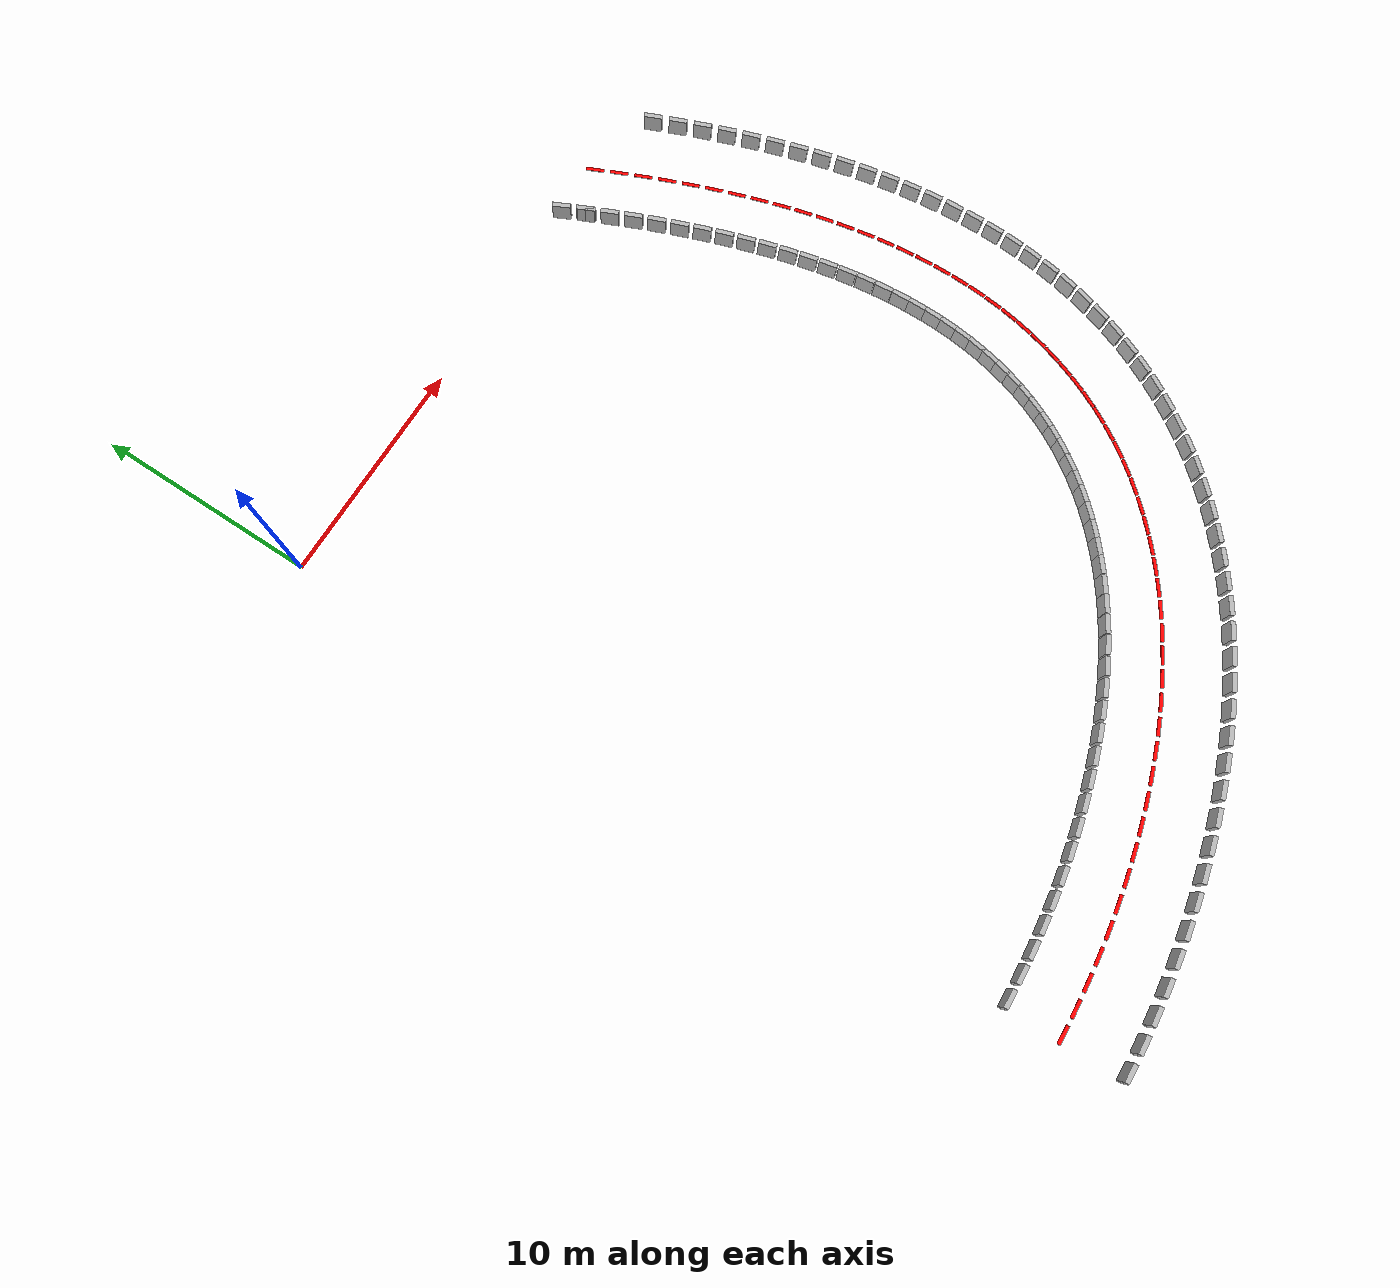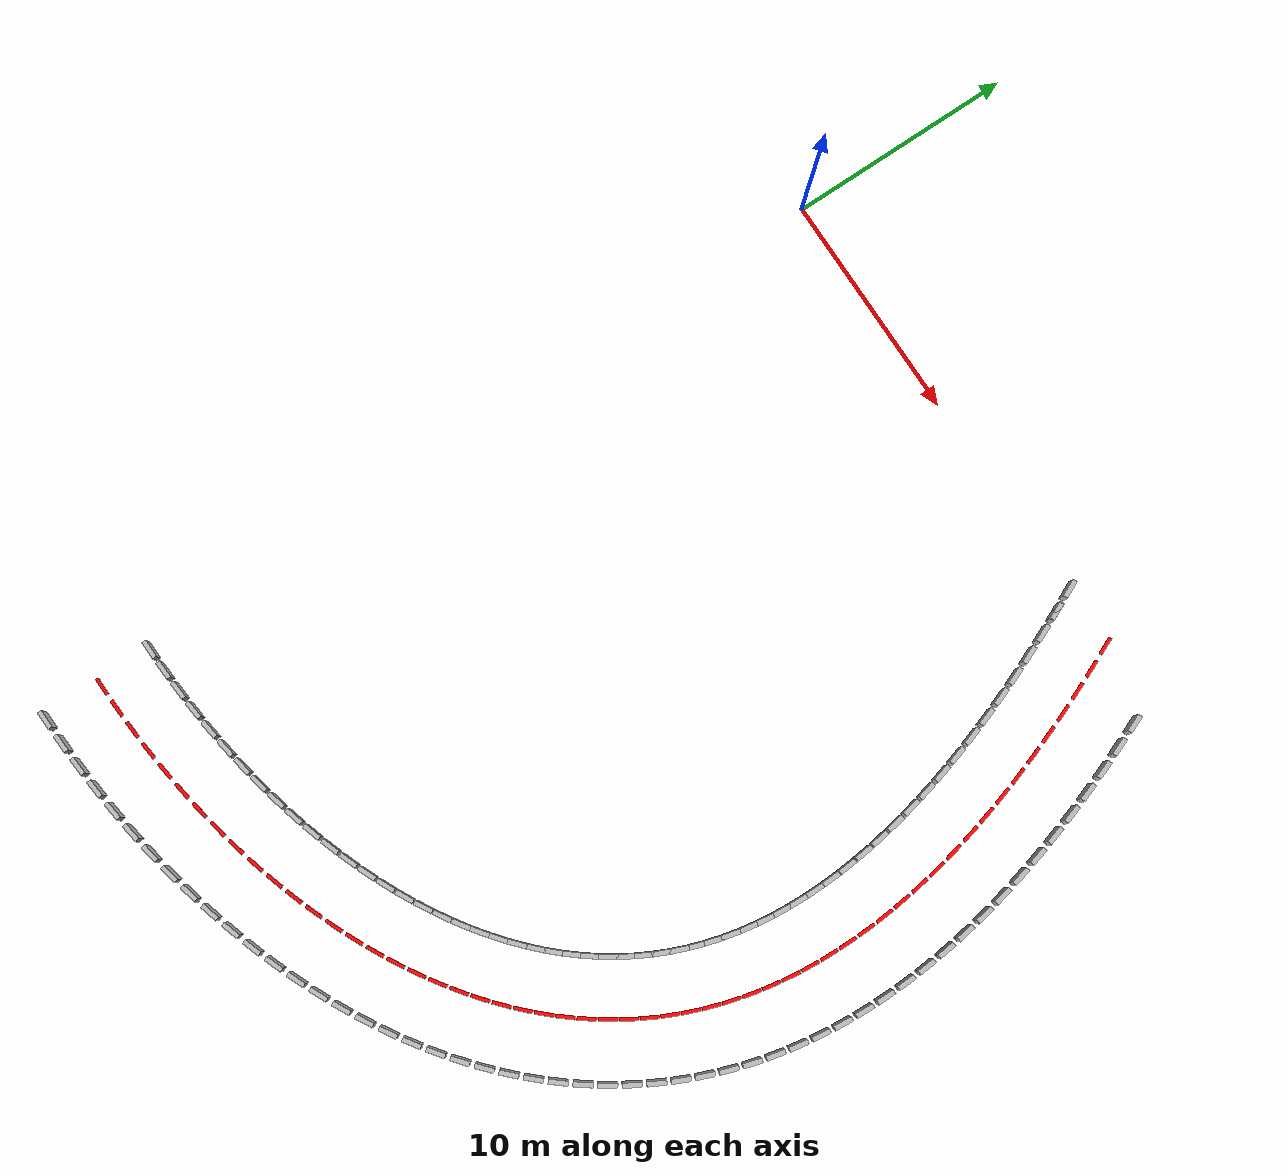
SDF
<sdf version="1.7">
 <model name="track_walls">
  <static>true</static>
  <link name="right_0">
   <pose>19.718 -1.022 0.5 0 0 -1.150</pose>
   <collision name="c"><geometry><box><size>0.8 0.2 1.0</size></box></geometry></collision>
   <visual name="v"><geometry><box><size>0.8 0.2 1.0</size></box></geometry></visual>
  </link>
  <link name="center_0">
   <pose>22.000 -0.000 0.010 0 0 -1.150</pose>
   <visual name="v">
    <geometry><box><size>0.8 0.15 0.02</size></box></geometry>
    <material><ambient>1 0 0 1</ambient><diffuse>1 0 0 1</diffuse></material>
   </visual>
  </link>
  <link name="right_1">
   <pose>20.160 -2.008 0.5 0 0 -1.158</pose>
   <collision name="c"><geometry><box><size>0.8 0.2 1.0</size></box></geometry></collision>
   <visual name="v"><geometry><box><size>0.8 0.2 1.0</size></box></geometry></visual>
  </link>
  <link name="center_1">
   <pose>22.450 -1.004 0.010 0 0 -1.158</pose>
   <visual name="v">
    <geometry><box><size>0.8 0.15 0.02</size></box></geometry>
    <material><ambient>1 0 0 1</ambient><diffuse>1 0 0 1</diffuse></material>
   </visual>
  </link>
  <link name="left_2">
   <pose>25.186 -1.042 0.5 0 0 -1.174</pose>
   <collision name="c"><geometry><box><size>0.8 0.2 1.0</size></box></geometry></collision>
   <visual name="v"><geometry><box><size>0.8 0.2 1.0</size></box></geometry></visual>
  </link>
  <link name="right_2">
   <pose>20.574 -2.973 0.5 0 0 -1.174</pose>
   <collision name="c"><geometry><box><size>0.8 0.2 1.0</size></box></geometry></collision>
   <visual name="v"><geometry><box><size>0.8 0.2 1.0</size></box></geometry></visual>
  </link>
  <link name="center_2">
   <pose>22.880 -2.007 0.010 0 0 -1.174</pose>
   <visual name="v">
    <geometry><box><size>0.8 0.15 0.02</size></box></geometry>
    <material><ambient>1 0 0 1</ambient><diffuse>1 0 0 1</diffuse></material>
   </visual>
  </link>
  <link name="left_3">
   <pose>25.612 -2.085 0.5 0 0 -1.192</pose>
   <collision name="c"><geometry><box><size>0.8 0.2 1.0</size></box></geometry></collision>
   <visual name="v"><geometry><box><size>0.8 0.2 1.0</size></box></geometry></visual>
  </link>
  <link name="right_3">
   <pose>20.966 -3.933 0.5 0 0 -1.192</pose>
   <collision name="c"><geometry><box><size>0.8 0.2 1.0</size></box></geometry></collision>
   <visual name="v"><geometry><box><size>0.8 0.2 1.0</size></box></geometry></visual>
  </link>
  <link name="center_3">
   <pose>23.289 -3.009 0.010 0 0 -1.192</pose>
   <visual name="v">
    <geometry><box><size>0.8 0.15 0.02</size></box></geometry>
    <material><ambient>1 0 0 1</ambient><diffuse>1 0 0 1</diffuse></material>
   </visual>
  </link>
  <link name="left_4">
   <pose>26.016 -3.129 0.5 0 0 -1.212</pose>
   <collision name="c"><geometry><box><size>0.8 0.2 1.0</size></box></geometry></collision>
   <visual name="v"><geometry><box><size>0.8 0.2 1.0</size></box></geometry></visual>
  </link>
  <link name="right_4">
   <pose>21.335 -4.887 0.5 0 0 -1.212</pose>
   <collision name="c"><geometry><box><size>0.8 0.2 1.0</size></box></geometry></collision>
   <visual name="v"><geometry><box><size>0.8 0.2 1.0</size></box></geometry></visual>
  </link>
  <link name="center_4">
   <pose>23.675 -4.008 0.010 0 0 -1.212</pose>
   <visual name="v">
    <geometry><box><size>0.8 0.15 0.02</size></box></geometry>
    <material><ambient>1 0 0 1</ambient><diffuse>1 0 0 1</diffuse></material>
   </visual>
  </link>
  <link name="left_5">
   <pose>26.396 -4.173 0.5 0 0 -1.232</pose>
   <collision name="c"><geometry><box><size>0.8 0.2 1.0</size></box></geometry></collision>
   <visual name="v"><geometry><box><size>0.8 0.2 1.0</size></box></geometry></visual>
  </link>
  <link name="right_5">
   <pose>21.680 -5.834 0.5 0 0 -1.232</pose>
   <collision name="c"><geometry><box><size>0.8 0.2 1.0</size></box></geometry></collision>
   <visual name="v"><geometry><box><size>0.8 0.2 1.0</size></box></geometry></visual>
  </link>
  <link name="center_5">
   <pose>24.038 -5.004 0.010 0 0 -1.232</pose>
   <visual name="v">
    <geometry><box><size>0.8 0.15 0.02</size></box></geometry>
    <material><ambient>1 0 0 1</ambient><diffuse>1 0 0 1</diffuse></material>
   </visual>
  </link>
  <link name="left_6">
   <pose>26.751 -5.218 0.5 0 0 -1.254</pose>
   <collision name="c"><geometry><box><size>0.8 0.2 1.0</size></box></geometry></collision>
   <visual name="v"><geometry><box><size>0.8 0.2 1.0</size></box></geometry></visual>
  </link>
  <link name="right_6">
   <pose>21.999 -6.773 0.5 0 0 -1.254</pose>
   <collision name="c"><geometry><box><size>0.8 0.2 1.0</size></box></geometry></collision>
   <visual name="v"><geometry><box><size>0.8 0.2 1.0</size></box></geometry></visual>
  </link>
  <link name="center_6">
   <pose>24.375 -5.995 0.010 0 0 -1.254</pose>
   <visual name="v">
    <geometry><box><size>0.8 0.15 0.02</size></box></geometry>
    <material><ambient>1 0 0 1</ambient><diffuse>1 0 0 1</diffuse></material>
   </visual>
  </link>
  <link name="left_7">
   <pose>27.079 -6.261 0.5 0 0 -1.278</pose>
   <collision name="c"><geometry><box><size>0.8 0.2 1.0</size></box></geometry></collision>
   <visual name="v"><geometry><box><size>0.8 0.2 1.0</size></box></geometry></visual>
  </link>
  <link name="right_7">
   <pose>22.292 -7.703 0.5 0 0 -1.278</pose>
   <collision name="c"><geometry><box><size>0.8 0.2 1.0</size></box></geometry></collision>
   <visual name="v"><geometry><box><size>0.8 0.2 1.0</size></box></geometry></visual>
  </link>
  <link name="center_7">
   <pose>24.685 -6.982 0.010 0 0 -1.278</pose>
   <visual name="v">
    <geometry><box><size>0.8 0.15 0.02</size></box></geometry>
    <material><ambient>1 0 0 1</ambient><diffuse>1 0 0 1</diffuse></material>
   </visual>
  </link>
  <link name="left_8">
   <pose>27.379 -7.303 0.5 0 0 -1.304</pose>
   <collision name="c"><geometry><box><size>0.8 0.2 1.0</size></box></geometry></collision>
   <visual name="v"><geometry><box><size>0.8 0.2 1.0</size></box></geometry></visual>
  </link>
  <link name="right_8">
   <pose>22.557 -8.623 0.5 0 0 -1.304</pose>
   <collision name="c"><geometry><box><size>0.8 0.2 1.0</size></box></geometry></collision>
   <visual name="v"><geometry><box><size>0.8 0.2 1.0</size></box></geometry></visual>
  </link>
  <link name="center_8">
   <pose>24.968 -7.963 0.010 0 0 -1.304</pose>
   <visual name="v">
    <geometry><box><size>0.8 0.15 0.02</size></box></geometry>
    <material><ambient>1 0 0 1</ambient><diffuse>1 0 0 1</diffuse></material>
   </visual>
  </link>
  <link name="left_9">
   <pose>27.649 -8.343 0.5 0 0 -1.331</pose>
   <collision name="c"><geometry><box><size>0.8 0.2 1.0</size></box></geometry></collision>
   <visual name="v"><geometry><box><size>0.8 0.2 1.0</size></box></geometry></visual>
  </link>
  <link name="right_9">
   <pose>22.793 -9.532 0.5 0 0 -1.331</pose>
   <collision name="c"><geometry><box><size>0.8 0.2 1.0</size></box></geometry></collision>
   <visual name="v"><geometry><box><size>0.8 0.2 1.0</size></box></geometry></visual>
  </link>
  <link name="center_9">
   <pose>25.221 -8.937 0.010 0 0 -1.331</pose>
   <visual name="v">
    <geometry><box><size>0.8 0.15 0.02</size></box></geometry>
    <material><ambient>1 0 0 1</ambient><diffuse>1 0 0 1</diffuse></material>
   </visual>
  </link>
  <link name="left_10">
   <pose>27.888 -9.380 0.5 0 0 -1.359</pose>
   <collision name="c"><geometry><box><size>0.8 0.2 1.0</size></box></geometry></collision>
   <visual name="v"><geometry><box><size>0.8 0.2 1.0</size></box></geometry></visual>
  </link>
  <link name="right_10">
   <pose>22.999 -10.429 0.5 0 0 -1.359</pose>
   <collision name="c"><geometry><box><size>0.8 0.2 1.0</size></box></geometry></collision>
   <visual name="v"><geometry><box><size>0.8 0.2 1.0</size></box></geometry></visual>
  </link>
  <link name="center_10">
   <pose>25.443 -9.904 0.010 0 0 -1.359</pose>
   <visual name="v">
    <geometry><box><size>0.8 0.15 0.02</size></box></geometry>
    <material><ambient>1 0 0 1</ambient><diffuse>1 0 0 1</diffuse></material>
   </visual>
  </link>
  <link name="left_11">
   <pose>28.094 -10.414 0.5 0 0 -1.390</pose>
   <collision name="c"><geometry><box><size>0.8 0.2 1.0</size></box></geometry></collision>
   <visual name="v"><geometry><box><size>0.8 0.2 1.0</size></box></geometry></visual>
  </link>
  <link name="right_11">
   <pose>23.175 -11.313 0.5 0 0 -1.390</pose>
   <collision name="c"><geometry><box><size>0.8 0.2 1.0</size></box></geometry></collision>
   <visual name="v"><geometry><box><size>0.8 0.2 1.0</size></box></geometry></visual>
  </link>
  <link name="center_11">
   <pose>25.634 -10.863 0.010 0 0 -1.390</pose>
   <visual name="v">
    <geometry><box><size>0.8 0.15 0.02</size></box></geometry>
    <material><ambient>1 0 0 1</ambient><diffuse>1 0 0 1</diffuse></material>
   </visual>
  </link>
  <link name="left_12">
   <pose>28.265 -11.444 0.5 0 0 -1.422</pose>
   <collision name="c"><geometry><box><size>0.8 0.2 1.0</size></box></geometry></collision>
   <visual name="v"><geometry><box><size>0.8 0.2 1.0</size></box></geometry></visual>
  </link>
  <link name="right_12">
   <pose>23.320 -12.183 0.5 0 0 -1.422</pose>
   <collision name="c"><geometry><box><size>0.8 0.2 1.0</size></box></geometry></collision>
   <visual name="v"><geometry><box><size>0.8 0.2 1.0</size></box></geometry></visual>
  </link>
  <link name="center_12">
   <pose>25.792 -11.813 0.010 0 0 -1.422</pose>
   <visual name="v">
    <geometry><box><size>0.8 0.15 0.02</size></box></geometry>
    <material><ambient>1 0 0 1</ambient><diffuse>1 0 0 1</diffuse></material>
   </visual>
  </link>
  <link name="left_13">
   <pose>28.401 -12.469 0.5 0 0 -1.457</pose>
   <collision name="c"><geometry><box><size>0.8 0.2 1.0</size></box></geometry></collision>
   <visual name="v"><geometry><box><size>0.8 0.2 1.0</size></box></geometry></visual>
  </link>
  <link name="right_13">
   <pose>23.433 -13.038 0.5 0 0 -1.457</pose>
   <collision name="c"><geometry><box><size>0.8 0.2 1.0</size></box></geometry></collision>
   <visual name="v"><geometry><box><size>0.8 0.2 1.0</size></box></geometry></visual>
  </link>
  <link name="center_13">
   <pose>25.917 -12.754 0.010 0 0 -1.457</pose>
   <visual name="v">
    <geometry><box><size>0.8 0.15 0.02</size></box></geometry>
    <material><ambient>1 0 0 1</ambient><diffuse>1 0 0 1</diffuse></material>
   </visual>
  </link>
  <link name="left_14">
   <pose>28.499 -13.490 0.5 0 0 -1.493</pose>
   <collision name="c"><geometry><box><size>0.8 0.2 1.0</size></box></geometry></collision>
   <visual name="v"><geometry><box><size>0.8 0.2 1.0</size></box></geometry></visual>
  </link>
  <link name="right_14">
   <pose>23.514 -13.877 0.5 0 0 -1.493</pose>
   <collision name="c"><geometry><box><size>0.8 0.2 1.0</size></box></geometry></collision>
   <visual name="v"><geometry><box><size>0.8 0.2 1.0</size></box></geometry></visual>
  </link>
  <link name="center_14">
   <pose>26.006 -13.683 0.010 0 0 -1.493</pose>
   <visual name="v">
    <geometry><box><size>0.8 0.15 0.02</size></box></geometry>
    <material><ambient>1 0 0 1</ambient><diffuse>1 0 0 1</diffuse></material>
   </visual>
  </link>
  <link name="left_15">
   <pose>28.559 -14.504 0.5 0 0 -1.532</pose>
   <collision name="c"><geometry><box><size>0.8 0.2 1.0</size></box></geometry></collision>
   <visual name="v"><geometry><box><size>0.8 0.2 1.0</size></box></geometry></visual>
  </link>
  <link name="right_15">
   <pose>23.562 -14.700 0.5 0 0 -1.532</pose>
   <collision name="c"><geometry><box><size>0.8 0.2 1.0</size></box></geometry></collision>
   <visual name="v"><geometry><box><size>0.8 0.2 1.0</size></box></geometry></visual>
  </link>
  <link name="center_15">
   <pose>26.060 -14.602 0.010 0 0 -1.532</pose>
   <visual name="v">
    <geometry><box><size>0.8 0.15 0.02</size></box></geometry>
    <material><ambient>1 0 0 1</ambient><diffuse>1 0 0 1</diffuse></material>
   </visual>
  </link>
  <link name="left_16">
   <pose>28.578 -15.511 0.5 0 0 -1.572</pose>
   <collision name="c"><geometry><box><size>0.8 0.2 1.0</size></box></geometry></collision>
   <visual name="v"><geometry><box><size>0.8 0.2 1.0</size></box></geometry></visual>
  </link>
  <link name="right_16">
   <pose>23.578 -15.505 0.5 0 0 -1.572</pose>
   <collision name="c"><geometry><box><size>0.8 0.2 1.0</size></box></geometry></collision>
   <visual name="v"><geometry><box><size>0.8 0.2 1.0</size></box></geometry></visual>
  </link>
  <link name="center_16">
   <pose>26.078 -15.508 0.010 0 0 -1.572</pose>
   <visual name="v">
    <geometry><box><size>0.8 0.15 0.02</size></box></geometry>
    <material><ambient>1 0 0 1</ambient><diffuse>1 0 0 1</diffuse></material>
   </visual>
  </link>
  <link name="left_17">
   <pose>28.556 -16.510 0.5 0 0 -1.614</pose>
   <collision name="c"><geometry><box><size>0.8 0.2 1.0</size></box></geometry></collision>
   <visual name="v"><geometry><box><size>0.8 0.2 1.0</size></box></geometry></visual>
  </link>
  <link name="right_17">
   <pose>23.561 -16.294 0.5 0 0 -1.614</pose>
   <collision name="c"><geometry><box><size>0.8 0.2 1.0</size></box></geometry></collision>
   <visual name="v"><geometry><box><size>0.8 0.2 1.0</size></box></geometry></visual>
  </link>
  <link name="center_17">
   <pose>26.058 -16.402 0.010 0 0 -1.614</pose>
   <visual name="v">
    <geometry><box><size>0.8 0.15 0.02</size></box></geometry>
    <material><ambient>1 0 0 1</ambient><diffuse>1 0 0 1</diffuse></material>
   </visual>
  </link>
  <link name="left_18">
   <pose>28.492 -17.500 0.5 0 0 -1.658</pose>
   <collision name="c"><geometry><box><size>0.8 0.2 1.0</size></box></geometry></collision>
   <visual name="v"><geometry><box><size>0.8 0.2 1.0</size></box></geometry></visual>
  </link>
  <link name="right_18">
   <pose>23.511 -17.064 0.5 0 0 -1.658</pose>
   <collision name="c"><geometry><box><size>0.8 0.2 1.0</size></box></geometry></collision>
   <visual name="v"><geometry><box><size>0.8 0.2 1.0</size></box></geometry></visual>
  </link>
  <link name="center_18">
   <pose>26.001 -17.282 0.010 0 0 -1.658</pose>
   <visual name="v">
    <geometry><box><size>0.8 0.15 0.02</size></box></geometry>
    <material><ambient>1 0 0 1</ambient><diffuse>1 0 0 1</diffuse></material>
   </visual>
  </link>
  <link name="left_19">
   <pose>28.383 -18.480 0.5 0 0 -1.704</pose>
   <collision name="c"><geometry><box><size>0.8 0.2 1.0</size></box></geometry></collision>
   <visual name="v"><geometry><box><size>0.8 0.2 1.0</size></box></geometry></visual>
  </link>
  <link name="right_19">
   <pose>23.428 -17.816 0.5 0 0 -1.704</pose>
   <collision name="c"><geometry><box><size>0.8 0.2 1.0</size></box></geometry></collision>
   <visual name="v"><geometry><box><size>0.8 0.2 1.0</size></box></geometry></visual>
  </link>
  <link name="center_19">
   <pose>25.905 -18.148 0.010 0 0 -1.704</pose>
   <visual name="v">
    <geometry><box><size>0.8 0.15 0.02</size></box></geometry>
    <material><ambient>1 0 0 1</ambient><diffuse>1 0 0 1</diffuse></material>
   </visual>
  </link>
  <link name="left_20">
   <pose>28.230 -19.449 0.5 0 0 -1.752</pose>
   <collision name="c"><geometry><box><size>0.8 0.2 1.0</size></box></geometry></collision>
   <visual name="v"><geometry><box><size>0.8 0.2 1.0</size></box></geometry></visual>
  </link>
  <link name="right_20">
   <pose>23.312 -18.550 0.5 0 0 -1.752</pose>
   <collision name="c"><geometry><box><size>0.8 0.2 1.0</size></box></geometry></collision>
   <visual name="v"><geometry><box><size>0.8 0.2 1.0</size></box></geometry></visual>
  </link>
  <link name="center_20">
   <pose>25.771 -18.999 0.010 0 0 -1.752</pose>
   <visual name="v">
    <geometry><box><size>0.8 0.15 0.02</size></box></geometry>
    <material><ambient>1 0 0 1</ambient><diffuse>1 0 0 1</diffuse></material>
   </visual>
  </link>
  <link name="left_21">
   <pose>28.031 -20.404 0.5 0 0 -1.801</pose>
   <collision name="c"><geometry><box><size>0.8 0.2 1.0</size></box></geometry></collision>
   <visual name="v"><geometry><box><size>0.8 0.2 1.0</size></box></geometry></visual>
  </link>
  <link name="right_21">
   <pose>23.163 -19.265 0.5 0 0 -1.801</pose>
   <collision name="c"><geometry><box><size>0.8 0.2 1.0</size></box></geometry></collision>
   <visual name="v"><geometry><box><size>0.8 0.2 1.0</size></box></geometry></visual>
  </link>
  <link name="center_21">
   <pose>25.597 -19.835 0.010 0 0 -1.801</pose>
   <visual name="v">
    <geometry><box><size>0.8 0.15 0.02</size></box></geometry>
    <material><ambient>1 0 0 1</ambient><diffuse>1 0 0 1</diffuse></material>
   </visual>
  </link>
  <link name="left_22">
   <pose>27.786 -21.345 0.5 0 0 -1.851</pose>
   <collision name="c"><geometry><box><size>0.8 0.2 1.0</size></box></geometry></collision>
   <visual name="v"><geometry><box><size>0.8 0.2 1.0</size></box></geometry></visual>
  </link>
  <link name="right_22">
   <pose>22.981 -19.963 0.5 0 0 -1.851</pose>
   <collision name="c"><geometry><box><size>0.8 0.2 1.0</size></box></geometry></collision>
   <visual name="v"><geometry><box><size>0.8 0.2 1.0</size></box></geometry></visual>
  </link>
  <link name="center_22">
   <pose>25.384 -20.654 0.010 0 0 -1.851</pose>
   <visual name="v">
    <geometry><box><size>0.8 0.15 0.02</size></box></geometry>
    <material><ambient>1 0 0 1</ambient><diffuse>1 0 0 1</diffuse></material>
   </visual>
  </link>
  <link name="left_23">
   <pose>27.495 -22.269 0.5 0 0 -1.902</pose>
   <collision name="c"><geometry><box><size>0.8 0.2 1.0</size></box></geometry></collision>
   <visual name="v"><geometry><box><size>0.8 0.2 1.0</size></box></geometry></visual>
  </link>
  <link name="right_23">
   <pose>22.767 -20.642 0.5 0 0 -1.902</pose>
   <collision name="c"><geometry><box><size>0.8 0.2 1.0</size></box></geometry></collision>
   <visual name="v"><geometry><box><size>0.8 0.2 1.0</size></box></geometry></visual>
  </link>
  <link name="center_23">
   <pose>25.131 -21.456 0.010 0 0 -1.902</pose>
   <visual name="v">
    <geometry><box><size>0.8 0.15 0.02</size></box></geometry>
    <material><ambient>1 0 0 1</ambient><diffuse>1 0 0 1</diffuse></material>
   </visual>
  </link>
  <link name="left_24">
   <pose>27.156 -23.175 0.5 0 0 -1.954</pose>
   <collision name="c"><geometry><box><size>0.8 0.2 1.0</size></box></geometry></collision>
   <visual name="v"><geometry><box><size>0.8 0.2 1.0</size></box></geometry></visual>
  </link>
  <link name="right_24">
   <pose>22.519 -21.305 0.5 0 0 -1.954</pose>
   <collision name="c"><geometry><box><size>0.8 0.2 1.0</size></box></geometry></collision>
   <visual name="v"><geometry><box><size>0.8 0.2 1.0</size></box></geometry></visual>
  </link>
  <link name="center_24">
   <pose>24.838 -22.240 0.010 0 0 -1.954</pose>
   <visual name="v">
    <geometry><box><size>0.8 0.15 0.02</size></box></geometry>
    <material><ambient>1 0 0 1</ambient><diffuse>1 0 0 1</diffuse></material>
   </visual>
  </link>
  <link name="left_25">
   <pose>26.771 -24.062 0.5 0 0 -2.007</pose>
   <collision name="c"><geometry><box><size>0.8 0.2 1.0</size></box></geometry></collision>
   <visual name="v"><geometry><box><size>0.8 0.2 1.0</size></box></geometry></visual>
  </link>
  <link name="right_25">
   <pose>22.239 -21.950 0.5 0 0 -2.007</pose>
   <collision name="c"><geometry><box><size>0.8 0.2 1.0</size></box></geometry></collision>
   <visual name="v"><geometry><box><size>0.8 0.2 1.0</size></box></geometry></visual>
  </link>
  <link name="center_25">
   <pose>24.505 -23.006 0.010 0 0 -2.007</pose>
   <visual name="v">
    <geometry><box><size>0.8 0.15 0.02</size></box></geometry>
    <material><ambient>1 0 0 1</ambient><diffuse>1 0 0 1</diffuse></material>
   </visual>
  </link>
  <link name="left_26">
   <pose>26.340 -24.927 0.5 0 0 -2.060</pose>
   <collision name="c"><geometry><box><size>0.8 0.2 1.0</size></box></geometry></collision>
   <visual name="v"><geometry><box><size>0.8 0.2 1.0</size></box></geometry></visual>
  </link>
  <link name="right_26">
   <pose>21.926 -22.580 0.5 0 0 -2.060</pose>
   <collision name="c"><geometry><box><size>0.8 0.2 1.0</size></box></geometry></collision>
   <visual name="v"><geometry><box><size>0.8 0.2 1.0</size></box></geometry></visual>
  </link>
  <link name="center_26">
   <pose>24.133 -23.753 0.010 0 0 -2.060</pose>
   <visual name="v">
    <geometry><box><size>0.8 0.15 0.02</size></box></geometry>
    <material><ambient>1 0 0 1</ambient><diffuse>1 0 0 1</diffuse></material>
   </visual>
  </link>
  <link name="left_27">
   <pose>25.863 -25.770 0.5 0 0 -2.112</pose>
   <collision name="c"><geometry><box><size>0.8 0.2 1.0</size></box></geometry></collision>
   <visual name="v"><geometry><box><size>0.8 0.2 1.0</size></box></geometry></visual>
  </link>
  <link name="right_27">
   <pose>21.579 -23.193 0.5 0 0 -2.112</pose>
   <collision name="c"><geometry><box><size>0.8 0.2 1.0</size></box></geometry></collision>
   <visual name="v"><geometry><box><size>0.8 0.2 1.0</size></box></geometry></visual>
  </link>
  <link name="center_27">
   <pose>23.721 -24.481 0.010 0 0 -2.112</pose>
   <visual name="v">
    <geometry><box><size>0.8 0.15 0.02</size></box></geometry>
    <material><ambient>1 0 0 1</ambient><diffuse>1 0 0 1</diffuse></material>
   </visual>
  </link>
  <link name="left_28">
   <pose>25.342 -26.587 0.5 0 0 -2.165</pose>
   <collision name="c"><geometry><box><size>0.8 0.2 1.0</size></box></geometry></collision>
   <visual name="v"><geometry><box><size>0.8 0.2 1.0</size></box></geometry></visual>
  </link>
  <link name="right_28">
   <pose>21.198 -23.790 0.5 0 0 -2.165</pose>
   <collision name="c"><geometry><box><size>0.8 0.2 1.0</size></box></geometry></collision>
   <visual name="v"><geometry><box><size>0.8 0.2 1.0</size></box></geometry></visual>
  </link>
  <link name="center_28">
   <pose>23.270 -25.189 0.010 0 0 -2.165</pose>
   <visual name="v">
    <geometry><box><size>0.8 0.15 0.02</size></box></geometry>
    <material><ambient>1 0 0 1</ambient><diffuse>1 0 0 1</diffuse></material>
   </visual>
  </link>
  <link name="left_29">
   <pose>24.777 -27.379 0.5 0 0 -2.216</pose>
   <collision name="c"><geometry><box><size>0.8 0.2 1.0</size></box></geometry></collision>
   <visual name="v"><geometry><box><size>0.8 0.2 1.0</size></box></geometry></visual>
  </link>
  <link name="right_29">
   <pose>20.783 -24.371 0.5 0 0 -2.216</pose>
   <collision name="c"><geometry><box><size>0.8 0.2 1.0</size></box></geometry></collision>
   <visual name="v"><geometry><box><size>0.8 0.2 1.0</size></box></geometry></visual>
  </link>
  <link name="center_29">
   <pose>22.780 -25.875 0.010 0 0 -2.216</pose>
   <visual name="v">
    <geometry><box><size>0.8 0.15 0.02</size></box></geometry>
    <material><ambient>1 0 0 1</ambient><diffuse>1 0 0 1</diffuse></material>
   </visual>
  </link>
  <link name="left_30">
   <pose>24.169 -28.145 0.5 0 0 -2.267</pose>
   <collision name="c"><geometry><box><size>0.8 0.2 1.0</size></box></geometry></collision>
   <visual name="v"><geometry><box><size>0.8 0.2 1.0</size></box></geometry></visual>
  </link>
  <link name="right_30">
   <pose>20.333 -24.937 0.5 0 0 -2.267</pose>
   <collision name="c"><geometry><box><size>0.8 0.2 1.0</size></box></geometry></collision>
   <visual name="v"><geometry><box><size>0.8 0.2 1.0</size></box></geometry></visual>
  </link>
  <link name="center_30">
   <pose>22.251 -26.541 0.010 0 0 -2.267</pose>
   <visual name="v">
    <geometry><box><size>0.8 0.15 0.02</size></box></geometry>
    <material><ambient>1 0 0 1</ambient><diffuse>1 0 0 1</diffuse></material>
   </visual>
  </link>
  <link name="left_31">
   <pose>23.520 -28.882 0.5 0 0 -2.317</pose>
   <collision name="c"><geometry><box><size>0.8 0.2 1.0</size></box></geometry></collision>
   <visual name="v"><geometry><box><size>0.8 0.2 1.0</size></box></geometry></visual>
  </link>
  <link name="right_31">
   <pose>19.850 -25.487 0.5 0 0 -2.317</pose>
   <collision name="c"><geometry><box><size>0.8 0.2 1.0</size></box></geometry></collision>
   <visual name="v"><geometry><box><size>0.8 0.2 1.0</size></box></geometry></visual>
  </link>
  <link name="center_31">
   <pose>21.685 -27.184 0.010 0 0 -2.317</pose>
   <visual name="v">
    <geometry><box><size>0.8 0.15 0.02</size></box></geometry>
    <material><ambient>1 0 0 1</ambient><diffuse>1 0 0 1</diffuse></material>
   </visual>
  </link>
  <link name="left_32">
   <pose>22.832 -29.590 0.5 0 0 -2.366</pose>
   <collision name="c"><geometry><box><size>0.8 0.2 1.0</size></box></geometry></collision>
   <visual name="v"><geometry><box><size>0.8 0.2 1.0</size></box></geometry></visual>
  </link>
  <link name="right_32">
   <pose>19.331 -26.021 0.5 0 0 -2.366</pose>
   <collision name="c"><geometry><box><size>0.8 0.2 1.0</size></box></geometry></collision>
   <visual name="v"><geometry><box><size>0.8 0.2 1.0</size></box></geometry></visual>
  </link>
  <link name="center_32">
   <pose>21.081 -27.806 0.010 0 0 -2.366</pose>
   <visual name="v">
    <geometry><box><size>0.8 0.15 0.02</size></box></geometry>
    <material><ambient>1 0 0 1</ambient><diffuse>1 0 0 1</diffuse></material>
   </visual>
  </link>
  <link name="left_33">
   <pose>22.106 -30.270 0.5 0 0 -2.413</pose>
   <collision name="c"><geometry><box><size>0.8 0.2 1.0</size></box></geometry></collision>
   <visual name="v"><geometry><box><size>0.8 0.2 1.0</size></box></geometry></visual>
  </link>
  <link name="right_33">
   <pose>18.777 -26.538 0.5 0 0 -2.413</pose>
   <collision name="c"><geometry><box><size>0.8 0.2 1.0</size></box></geometry></collision>
   <visual name="v"><geometry><box><size>0.8 0.2 1.0</size></box></geometry></visual>
  </link>
  <link name="center_33">
   <pose>20.441 -28.404 0.010 0 0 -2.413</pose>
   <visual name="v">
    <geometry><box><size>0.8 0.15 0.02</size></box></geometry>
    <material><ambient>1 0 0 1</ambient><diffuse>1 0 0 1</diffuse></material>
   </visual>
  </link>
  <link name="left_34">
   <pose>21.343 -30.919 0.5 0 0 -2.459</pose>
   <collision name="c"><geometry><box><size>0.8 0.2 1.0</size></box></geometry></collision>
   <visual name="v"><geometry><box><size>0.8 0.2 1.0</size></box></geometry></visual>
  </link>
  <link name="right_34">
   <pose>18.189 -27.039 0.5 0 0 -2.459</pose>
   <collision name="c"><geometry><box><size>0.8 0.2 1.0</size></box></geometry></collision>
   <visual name="v"><geometry><box><size>0.8 0.2 1.0</size></box></geometry></visual>
  </link>
  <link name="center_34">
   <pose>19.766 -28.979 0.010 0 0 -2.459</pose>
   <visual name="v">
    <geometry><box><size>0.8 0.15 0.02</size></box></geometry>
    <material><ambient>1 0 0 1</ambient><diffuse>1 0 0 1</diffuse></material>
   </visual>
  </link>
  <link name="left_35">
   <pose>20.545 -31.538 0.5 0 0 -2.504</pose>
   <collision name="c"><geometry><box><size>0.8 0.2 1.0</size></box></geometry></collision>
   <visual name="v"><geometry><box><size>0.8 0.2 1.0</size></box></geometry></visual>
  </link>
  <link name="right_35">
   <pose>17.567 -27.522 0.5 0 0 -2.504</pose>
   <collision name="c"><geometry><box><size>0.8 0.2 1.0</size></box></geometry></collision>
   <visual name="v"><geometry><box><size>0.8 0.2 1.0</size></box></geometry></visual>
  </link>
  <link name="center_35">
   <pose>19.056 -29.530 0.010 0 0 -2.504</pose>
   <visual name="v">
    <geometry><box><size>0.8 0.15 0.02</size></box></geometry>
    <material><ambient>1 0 0 1</ambient><diffuse>1 0 0 1</diffuse></material>
   </visual>
  </link>
  <link name="left_36">
   <pose>19.714 -32.127 0.5 0 0 -2.546</pose>
   <collision name="c"><geometry><box><size>0.8 0.2 1.0</size></box></geometry></collision>
   <visual name="v"><geometry><box><size>0.8 0.2 1.0</size></box></geometry></visual>
  </link>
  <link name="right_36">
   <pose>16.911 -27.987 0.5 0 0 -2.546</pose>
   <collision name="c"><geometry><box><size>0.8 0.2 1.0</size></box></geometry></collision>
   <visual name="v"><geometry><box><size>0.8 0.2 1.0</size></box></geometry></visual>
  </link>
  <link name="center_36">
   <pose>18.312 -30.057 0.010 0 0 -2.546</pose>
   <visual name="v">
    <geometry><box><size>0.8 0.15 0.02</size></box></geometry>
    <material><ambient>1 0 0 1</ambient><diffuse>1 0 0 1</diffuse></material>
   </visual>
  </link>
  <link name="left_37">
   <pose>18.851 -32.685 0.5 0 0 -2.588</pose>
   <collision name="c"><geometry><box><size>0.8 0.2 1.0</size></box></geometry></collision>
   <visual name="v"><geometry><box><size>0.8 0.2 1.0</size></box></geometry></visual>
  </link>
  <link name="right_37">
   <pose>16.221 -28.432 0.5 0 0 -2.588</pose>
   <collision name="c"><geometry><box><size>0.8 0.2 1.0</size></box></geometry></collision>
   <visual name="v"><geometry><box><size>0.8 0.2 1.0</size></box></geometry></visual>
  </link>
  <link name="center_37">
   <pose>17.536 -30.559 0.010 0 0 -2.588</pose>
   <visual name="v">
    <geometry><box><size>0.8 0.15 0.02</size></box></geometry>
    <material><ambient>1 0 0 1</ambient><diffuse>1 0 0 1</diffuse></material>
   </visual>
  </link>
  <link name="left_38">
   <pose>17.958 -33.213 0.5 0 0 -2.628</pose>
   <collision name="c"><geometry><box><size>0.8 0.2 1.0</size></box></geometry></collision>
   <visual name="v"><geometry><box><size>0.8 0.2 1.0</size></box></geometry></visual>
  </link>
  <link name="right_38">
   <pose>15.500 -28.859 0.5 0 0 -2.628</pose>
   <collision name="c"><geometry><box><size>0.8 0.2 1.0</size></box></geometry></collision>
   <visual name="v"><geometry><box><size>0.8 0.2 1.0</size></box></geometry></visual>
  </link>
  <link name="center_38">
   <pose>16.729 -31.036 0.010 0 0 -2.628</pose>
   <visual name="v">
    <geometry><box><size>0.8 0.15 0.02</size></box></geometry>
    <material><ambient>1 0 0 1</ambient><diffuse>1 0 0 1</diffuse></material>
   </visual>
  </link>
  <link name="left_39">
   <pose>17.036 -33.710 0.5 0 0 -2.666</pose>
   <collision name="c"><geometry><box><size>0.8 0.2 1.0</size></box></geometry></collision>
   <visual name="v"><geometry><box><size>0.8 0.2 1.0</size></box></geometry></visual>
  </link>
  <link name="right_39">
   <pose>14.747 -29.264 0.5 0 0 -2.666</pose>
   <collision name="c"><geometry><box><size>0.8 0.2 1.0</size></box></geometry></collision>
   <visual name="v"><geometry><box><size>0.8 0.2 1.0</size></box></geometry></visual>
  </link>
  <link name="center_39">
   <pose>15.892 -31.487 0.010 0 0 -2.666</pose>
   <visual name="v">
    <geometry><box><size>0.8 0.15 0.02</size></box></geometry>
    <material><ambient>1 0 0 1</ambient><diffuse>1 0 0 1</diffuse></material>
   </visual>
  </link>
  <link name="left_40">
   <pose>16.087 -34.176 0.5 0 0 -2.703</pose>
   <collision name="c"><geometry><box><size>0.8 0.2 1.0</size></box></geometry></collision>
   <visual name="v"><geometry><box><size>0.8 0.2 1.0</size></box></geometry></visual>
  </link>
  <link name="right_40">
   <pose>13.964 -29.649 0.5 0 0 -2.703</pose>
   <collision name="c"><geometry><box><size>0.8 0.2 1.0</size></box></geometry></collision>
   <visual name="v"><geometry><box><size>0.8 0.2 1.0</size></box></geometry></visual>
  </link>
  <link name="center_40">
   <pose>15.026 -31.913 0.010 0 0 -2.703</pose>
   <visual name="v">
    <geometry><box><size>0.8 0.15 0.02</size></box></geometry>
    <material><ambient>1 0 0 1</ambient><diffuse>1 0 0 1</diffuse></material>
   </visual>
  </link>
  <link name="left_41">
   <pose>15.112 -34.612 0.5 0 0 -2.739</pose>
   <collision name="c"><geometry><box><size>0.8 0.2 1.0</size></box></geometry></collision>
   <visual name="v"><geometry><box><size>0.8 0.2 1.0</size></box></geometry></visual>
  </link>
  <link name="right_41">
   <pose>13.153 -30.012 0.5 0 0 -2.739</pose>
   <collision name="c"><geometry><box><size>0.8 0.2 1.0</size></box></geometry></collision>
   <visual name="v"><geometry><box><size>0.8 0.2 1.0</size></box></geometry></visual>
  </link>
  <link name="center_41">
   <pose>14.133 -32.312 0.010 0 0 -2.739</pose>
   <visual name="v">
    <geometry><box><size>0.8 0.15 0.02</size></box></geometry>
    <material><ambient>1 0 0 1</ambient><diffuse>1 0 0 1</diffuse></material>
   </visual>
  </link>
  <link name="left_42">
   <pose>14.114 -35.017 0.5 0 0 -2.773</pose>
   <collision name="c"><geometry><box><size>0.8 0.2 1.0</size></box></geometry></collision>
   <visual name="v"><geometry><box><size>0.8 0.2 1.0</size></box></geometry></visual>
  </link>
  <link name="right_42">
   <pose>12.314 -30.352 0.5 0 0 -2.773</pose>
   <collision name="c"><geometry><box><size>0.8 0.2 1.0</size></box></geometry></collision>
   <visual name="v"><geometry><box><size>0.8 0.2 1.0</size></box></geometry></visual>
  </link>
  <link name="center_42">
   <pose>13.214 -32.684 0.010 0 0 -2.773</pose>
   <visual name="v">
    <geometry><box><size>0.8 0.15 0.02</size></box></geometry>
    <material><ambient>1 0 0 1</ambient><diffuse>1 0 0 1</diffuse></material>
   </visual>
  </link>
  <link name="left_43">
   <pose>13.093 -35.391 0.5 0 0 -2.807</pose>
   <collision name="c"><geometry><box><size>0.8 0.2 1.0</size></box></geometry></collision>
   <visual name="v"><geometry><box><size>0.8 0.2 1.0</size></box></geometry></visual>
  </link>
  <link name="right_43">
   <pose>11.449 -30.669 0.5 0 0 -2.807</pose>
   <collision name="c"><geometry><box><size>0.8 0.2 1.0</size></box></geometry></collision>
   <visual name="v"><geometry><box><size>0.8 0.2 1.0</size></box></geometry></visual>
  </link>
  <link name="center_43">
   <pose>12.271 -33.030 0.010 0 0 -2.807</pose>
   <visual name="v">
    <geometry><box><size>0.8 0.15 0.02</size></box></geometry>
    <material><ambient>1 0 0 1</ambient><diffuse>1 0 0 1</diffuse></material>
   </visual>
  </link>
  <link name="left_44">
   <pose>12.051 -35.735 0.5 0 0 -2.839</pose>
   <collision name="c"><geometry><box><size>0.8 0.2 1.0</size></box></geometry></collision>
   <visual name="v"><geometry><box><size>0.8 0.2 1.0</size></box></geometry></visual>
  </link>
  <link name="right_44">
   <pose>10.560 -30.962 0.5 0 0 -2.839</pose>
   <collision name="c"><geometry><box><size>0.8 0.2 1.0</size></box></geometry></collision>
   <visual name="v"><geometry><box><size>0.8 0.2 1.0</size></box></geometry></visual>
  </link>
  <link name="center_44">
   <pose>11.306 -33.348 0.010 0 0 -2.839</pose>
   <visual name="v">
    <geometry><box><size>0.8 0.15 0.02</size></box></geometry>
    <material><ambient>1 0 0 1</ambient><diffuse>1 0 0 1</diffuse></material>
   </visual>
  </link>
  <link name="left_45">
   <pose>10.991 -36.048 0.5 0 0 -2.870</pose>
   <collision name="c"><geometry><box><size>0.8 0.2 1.0</size></box></geometry></collision>
   <visual name="v"><geometry><box><size>0.8 0.2 1.0</size></box></geometry></visual>
  </link>
  <link name="right_45">
   <pose>9.649 -31.231 0.5 0 0 -2.870</pose>
   <collision name="c"><geometry><box><size>0.8 0.2 1.0</size></box></geometry></collision>
   <visual name="v"><geometry><box><size>0.8 0.2 1.0</size></box></geometry></visual>
  </link>
  <link name="center_45">
   <pose>10.320 -33.640 0.010 0 0 -2.870</pose>
   <visual name="v">
    <geometry><box><size>0.8 0.15 0.02</size></box></geometry>
    <material><ambient>1 0 0 1</ambient><diffuse>1 0 0 1</diffuse></material>
   </visual>
  </link>
  <link name="left_46">
   <pose>9.912 -36.330 0.5 0 0 -2.900</pose>
   <collision name="c"><geometry><box><size>0.8 0.2 1.0</size></box></geometry></collision>
   <visual name="v"><geometry><box><size>0.8 0.2 1.0</size></box></geometry></visual>
  </link>
  <link name="right_46">
   <pose>8.718 -31.475 0.5 0 0 -2.900</pose>
   <collision name="c"><geometry><box><size>0.8 0.2 1.0</size></box></geometry></collision>
   <visual name="v"><geometry><box><size>0.8 0.2 1.0</size></box></geometry></visual>
  </link>
  <link name="center_46">
   <pose>9.315 -33.903 0.010 0 0 -2.900</pose>
   <visual name="v">
    <geometry><box><size>0.8 0.15 0.02</size></box></geometry>
    <material><ambient>1 0 0 1</ambient><diffuse>1 0 0 1</diffuse></material>
   </visual>
  </link>
  <link name="left_47">
   <pose>8.819 -36.583 0.5 0 0 -2.930</pose>
   <collision name="c"><geometry><box><size>0.8 0.2 1.0</size></box></geometry></collision>
   <visual name="v"><geometry><box><size>0.8 0.2 1.0</size></box></geometry></visual>
  </link>
  <link name="right_47">
   <pose>7.767 -31.694 0.5 0 0 -2.930</pose>
   <collision name="c"><geometry><box><size>0.8 0.2 1.0</size></box></geometry></collision>
   <visual name="v"><geometry><box><size>0.8 0.2 1.0</size></box></geometry></visual>
  </link>
  <link name="center_47">
   <pose>8.293 -34.138 0.010 0 0 -2.930</pose>
   <visual name="v">
    <geometry><box><size>0.8 0.15 0.02</size></box></geometry>
    <material><ambient>1 0 0 1</ambient><diffuse>1 0 0 1</diffuse></material>
   </visual>
  </link>
  <link name="left_48">
   <pose>7.711 -36.804 0.5 0 0 -2.959</pose>
   <collision name="c"><geometry><box><size>0.8 0.2 1.0</size></box></geometry></collision>
   <visual name="v"><geometry><box><size>0.8 0.2 1.0</size></box></geometry></visual>
  </link>
  <link name="right_48">
   <pose>6.801 -31.887 0.5 0 0 -2.959</pose>
   <collision name="c"><geometry><box><size>0.8 0.2 1.0</size></box></geometry></collision>
   <visual name="v"><geometry><box><size>0.8 0.2 1.0</size></box></geometry></visual>
  </link>
  <link name="center_48">
   <pose>7.256 -34.346 0.010 0 0 -2.959</pose>
   <visual name="v">
    <geometry><box><size>0.8 0.15 0.02</size></box></geometry>
    <material><ambient>1 0 0 1</ambient><diffuse>1 0 0 1</diffuse></material>
   </visual>
  </link>
  <link name="left_49">
   <pose>6.590 -36.995 0.5 0 0 -2.987</pose>
   <collision name="c"><geometry><box><size>0.8 0.2 1.0</size></box></geometry></collision>
   <visual name="v"><geometry><box><size>0.8 0.2 1.0</size></box></geometry></visual>
  </link>
  <link name="right_49">
   <pose>5.819 -32.055 0.5 0 0 -2.987</pose>
   <collision name="c"><geometry><box><size>0.8 0.2 1.0</size></box></geometry></collision>
   <visual name="v"><geometry><box><size>0.8 0.2 1.0</size></box></geometry></visual>
  </link>
  <link name="center_49">
   <pose>6.205 -34.525 0.010 0 0 -2.987</pose>
   <visual name="v">
    <geometry><box><size>0.8 0.15 0.02</size></box></geometry>
    <material><ambient>1 0 0 1</ambient><diffuse>1 0 0 1</diffuse></material>
   </visual>
  </link>
  <link name="left_50">
   <pose>5.459 -37.155 0.5 0 0 -3.014</pose>
   <collision name="c"><geometry><box><size>0.8 0.2 1.0</size></box></geometry></collision>
   <visual name="v"><geometry><box><size>0.8 0.2 1.0</size></box></geometry></visual>
  </link>
  <link name="right_50">
   <pose>4.825 -32.196 0.5 0 0 -3.014</pose>
   <collision name="c"><geometry><box><size>0.8 0.2 1.0</size></box></geometry></collision>
   <visual name="v"><geometry><box><size>0.8 0.2 1.0</size></box></geometry></visual>
  </link>
  <link name="center_50">
   <pose>5.142 -34.675 0.010 0 0 -3.014</pose>
   <visual name="v">
    <geometry><box><size>0.8 0.15 0.02</size></box></geometry>
    <material><ambient>1 0 0 1</ambient><diffuse>1 0 0 1</diffuse></material>
   </visual>
  </link>
  <link name="left_51">
   <pose>4.320 -37.285 0.5 0 0 -3.042</pose>
   <collision name="c"><geometry><box><size>0.8 0.2 1.0</size></box></geometry></collision>
   <visual name="v"><geometry><box><size>0.8 0.2 1.0</size></box></geometry></visual>
  </link>
  <link name="right_51">
   <pose>3.821 -32.310 0.5 0 0 -3.042</pose>
   <collision name="c"><geometry><box><size>0.8 0.2 1.0</size></box></geometry></collision>
   <visual name="v"><geometry><box><size>0.8 0.2 1.0</size></box></geometry></visual>
  </link>
  <link name="center_51">
   <pose>4.071 -34.798 0.010 0 0 -3.042</pose>
   <visual name="v">
    <geometry><box><size>0.8 0.15 0.02</size></box></geometry>
    <material><ambient>1 0 0 1</ambient><diffuse>1 0 0 1</diffuse></material>
   </visual>
  </link>
  <link name="left_52">
   <pose>3.173 -37.384 0.5 0 0 -3.069</pose>
   <collision name="c"><geometry><box><size>0.8 0.2 1.0</size></box></geometry></collision>
   <visual name="v"><geometry><box><size>0.8 0.2 1.0</size></box></geometry></visual>
  </link>
  <link name="right_52">
   <pose>2.809 -32.398 0.5 0 0 -3.069</pose>
   <collision name="c"><geometry><box><size>0.8 0.2 1.0</size></box></geometry></collision>
   <visual name="v"><geometry><box><size>0.8 0.2 1.0</size></box></geometry></visual>
  </link>
  <link name="center_52">
   <pose>2.991 -34.891 0.010 0 0 -3.069</pose>
   <visual name="v">
    <geometry><box><size>0.8 0.15 0.02</size></box></geometry>
    <material><ambient>1 0 0 1</ambient><diffuse>1 0 0 1</diffuse></material>
   </visual>
  </link>
  <link name="left_53">
   <pose>2.022 -37.453 0.5 0 0 -3.095</pose>
   <collision name="c"><geometry><box><size>0.8 0.2 1.0</size></box></geometry></collision>
   <visual name="v"><geometry><box><size>0.8 0.2 1.0</size></box></geometry></visual>
  </link>
  <link name="right_53">
   <pose>1.790 -32.459 0.5 0 0 -3.095</pose>
   <collision name="c"><geometry><box><size>0.8 0.2 1.0</size></box></geometry></collision>
   <visual name="v"><geometry><box><size>0.8 0.2 1.0</size></box></geometry></visual>
  </link>
  <link name="center_53">
   <pose>1.906 -34.956 0.010 0 0 -3.095</pose>
   <visual name="v">
    <geometry><box><size>0.8 0.15 0.02</size></box></geometry>
    <material><ambient>1 0 0 1</ambient><diffuse>1 0 0 1</diffuse></material>
   </visual>
  </link>
  <link name="left_54">
   <pose>0.867 -37.491 0.5 0 0 -3.122</pose>
   <collision name="c"><geometry><box><size>0.8 0.2 1.0</size></box></geometry></collision>
   <visual name="v"><geometry><box><size>0.8 0.2 1.0</size></box></geometry></visual>
  </link>
  <link name="right_54">
   <pose>0.768 -32.492 0.5 0 0 -3.122</pose>
   <collision name="c"><geometry><box><size>0.8 0.2 1.0</size></box></geometry></collision>
   <visual name="v"><geometry><box><size>0.8 0.2 1.0</size></box></geometry></visual>
  </link>
  <link name="center_54">
   <pose>0.818 -34.992 0.010 0 0 -3.122</pose>
   <visual name="v">
    <geometry><box><size>0.8 0.15 0.02</size></box></geometry>
    <material><ambient>1 0 0 1</ambient><diffuse>1 0 0 1</diffuse></material>
   </visual>
  </link>
  <link name="right_218">
   <pose>19.273 -0.068 0.5 0 0 -1.128</pose>
   <collision name="c"><geometry><box><size>0.8 0.2 1.0</size></box></geometry></collision>
   <visual name="v"><geometry><box><size>0.8 0.2 1.0</size></box></geometry></visual>
  </link>
  <link name="right_219">
   <pose>19.734 -1.056 0.5 0 0 -1.135</pose>
   <collision name="c"><geometry><box><size>0.8 0.2 1.0</size></box></geometry></collision>
   <visual name="v"><geometry><box><size>0.8 0.2 1.0</size></box></geometry></visual>
  </link>
 </model>
</sdf>
